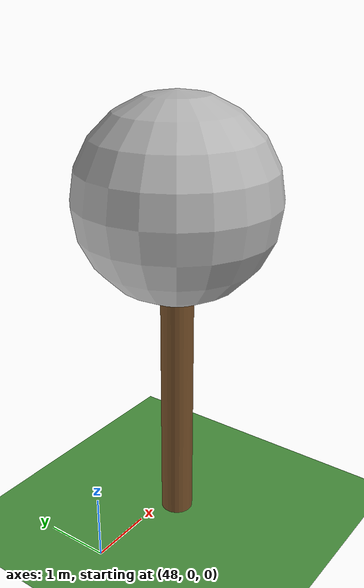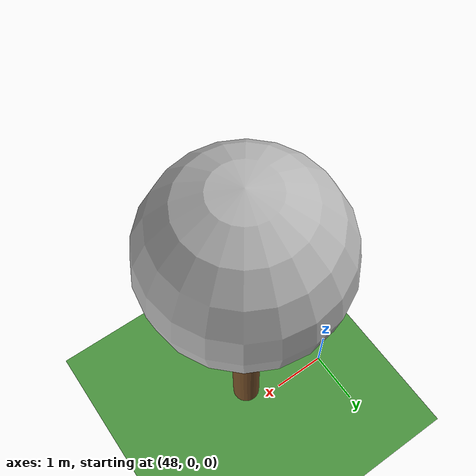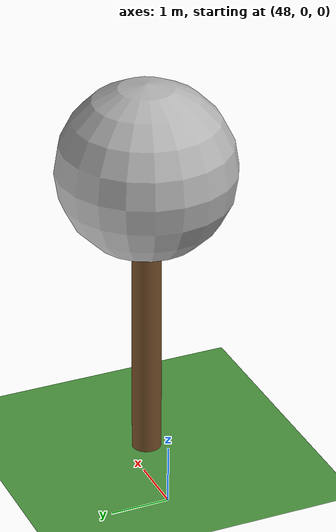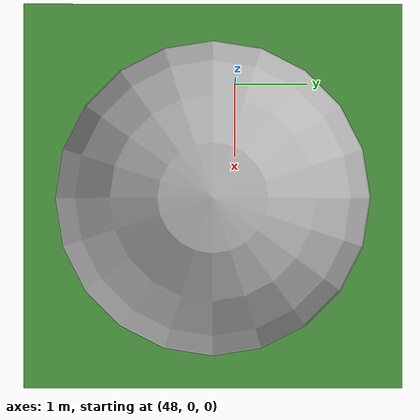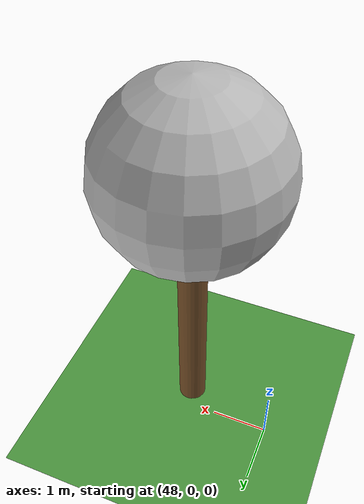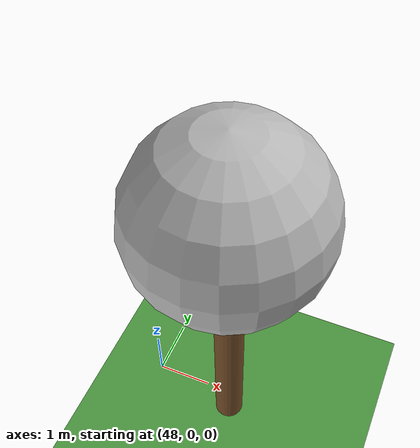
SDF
<?xml version="1.0" ?>
<?xml-model href="http://sdformat.org/schemas/root.xsd" schematypens="http://www.w3.org/2001/XMLSchema"?>
<sdf version='1.6'>
  <world name='default'>
    <plugin name='mrs_gazebo_static_transform_republisher_plugin' filename='libmrs_gazebo_static_transform_republisher.so'/>
    <spherical_coordinates>
      <surface_model>EARTH_WGS84</surface_model>
      <latitude_deg>47.397743</latitude_deg>
      <longitude_deg>8.545594</longitude_deg>
      <elevation>0</elevation>
      <heading_deg>0</heading_deg>
    </spherical_coordinates>
    <physics name='default_physics' default='0' type='ode'>
      <ode>
        <solver>
          <type>quick</type>
          <iters>50</iters>
          <sor>1</sor>
          <use_dynamic_moi_rescaling>0</use_dynamic_moi_rescaling>
        </solver>
        <constraints>
          <cfm>0</cfm>
          <erp>0.2</erp>
          <contact_max_correcting_vel>1000</contact_max_correcting_vel>
          <contact_surface_layer>0.001</contact_surface_layer>
        </constraints>
      </ode>
      <max_step_size>0.004</max_step_size>
      <real_time_factor>1</real_time_factor>
      <real_time_update_rate>250</real_time_update_rate>
    </physics>
    <scene>
      <shadows>0</shadows>
      <sky>
        <clouds/>
      </sky>
      <ambient>0.4 0.4 0.4 1</ambient>
      <background>0.7 0.7 0.7 1</background>
    </scene>
    <light name='sun' type='directional'>
      <cast_shadows>1</cast_shadows>
      <pose frame=''>250 250 600 0 -0 0</pose>
      <diffuse>0.8 0.8 0.8 1</diffuse>
      <specular>0.2 0.2 0.2 1</specular>
      <attenuation>
        <range>1000</range>
        <constant>0.9</constant>
        <linear>0.01</linear>
        <quadratic>0.001</quadratic>
      </attenuation>
      <direction>0 0 -1</direction>
    </light>
    <model name='tree_simple499'>
      <static>1</static>
      <link name='link'>
        <pose frame=''>0 0 0.1 0 -0 0</pose>
        <collision name='collision_trunk'>
          <pose frame=''>0 0 2 0 -0 0</pose>
          <geometry>
            <cylinder>
              <radius>0.25</radius>
              <length>4</length>
            </cylinder>
          </geometry>
          <max_contacts>10</max_contacts>
          <surface>
            <contact>
              <ode/>
            </contact>
            <bounce/>
            <friction>
              <torsional>
                <ode/>
              </torsional>
              <ode/>
            </friction>
          </surface>
        </collision>
        <collision name='collision_treetop'>
          <pose frame=''>0 0 5.2 0 -0 0</pose>
          <geometry>
            <sphere>
              <radius>1.5</radius>
            </sphere>
          </geometry>
          <max_contacts>10</max_contacts>
          <surface>
            <contact>
              <ode/>
            </contact>
            <bounce/>
            <friction>
              <torsional>
                <ode/>
              </torsional>
              <ode/>
            </friction>
          </surface>
        </collision>
        <visual name='trunk'>
          <pose frame=''>0 0 2 0 -0 0</pose>
          <geometry>
            <cylinder>
              <radius>0.25</radius>
              <length>4</length>
            </cylinder>
          </geometry>
          <material>
            <script>
              <uri>model://tree_simple/scripts</uri>
              <uri>model://tree_simple/materials/textures</uri>
              <name>TreeSimple/Trunk</name>
            </script>
          </material>
        </visual>
        <visual name='treetop'>
          <pose frame=''>0 0 5.2 0 -0 0</pose>
          <geometry>
            <sphere>
              <radius>1.5</radius>
            </sphere>
          </geometry>
          <material>
            <script>
              <uri>model://tree_simple/scripts</uri>
              <uri>model://tree_simple/materials/textures</uri>
              <name>TreeSimple/Treetop</name>
            </script>
          </material>
        </visual>
        <self_collide>0</self_collide>
        <kinematic>0</kinematic>
        <enable_wind>0</enable_wind>
      </link>
      <pose frame=''>49.5773 -0.301034 0 0 -0 0</pose>
    </model>
    <model name='ground_plane'>
      <static>1</static>
      <link name='link'>
        <collision name='collision'>
          <pose frame=''>0 0 0 0 -0 0</pose>
          <geometry>
            <plane>
              <normal>0 0 1</normal>
              <size>250 250</size>
            </plane>
          </geometry>
          <surface>
            <friction>
              <ode>
                <mu>1</mu>
                <mu2>1</mu2>
              </ode>
              <torsional>
                <ode/>
              </torsional>
            </friction>
            <contact>
              <ode/>
            </contact>
            <bounce/>
          </surface>
          <max_contacts>10</max_contacts>
        </collision>
        <visual name='grass'>
          <pose frame=''>0 0 0 0 -0 0</pose>
          <cast_shadows>0</cast_shadows>
          <geometry>
            <plane>
              <normal>0 0 1</normal>
              <size>150 250</size>
            </plane>
          </geometry>
          <material>
            <script>
              <uri>file://media/materials/scripts/Gazebo.material</uri>
              <name>Gazebo/Grass</name>
            </script>
          </material>
        </visual>
        <self_collide>0</self_collide>
        <enable_wind>0</enable_wind>
        <kinematic>0</kinematic>
      </link>
    </model>
    <gui fullscreen='0'>
      <camera name='camera'>
        <pose frame=''>-2.64816 7.25291 56.204 0 1.5578 0.004008</pose>
        <view_controller>orbit</view_controller>
        <projection_type>perspective</projection_type>
      </camera>
    </gui>
  </world>
</sdf>
